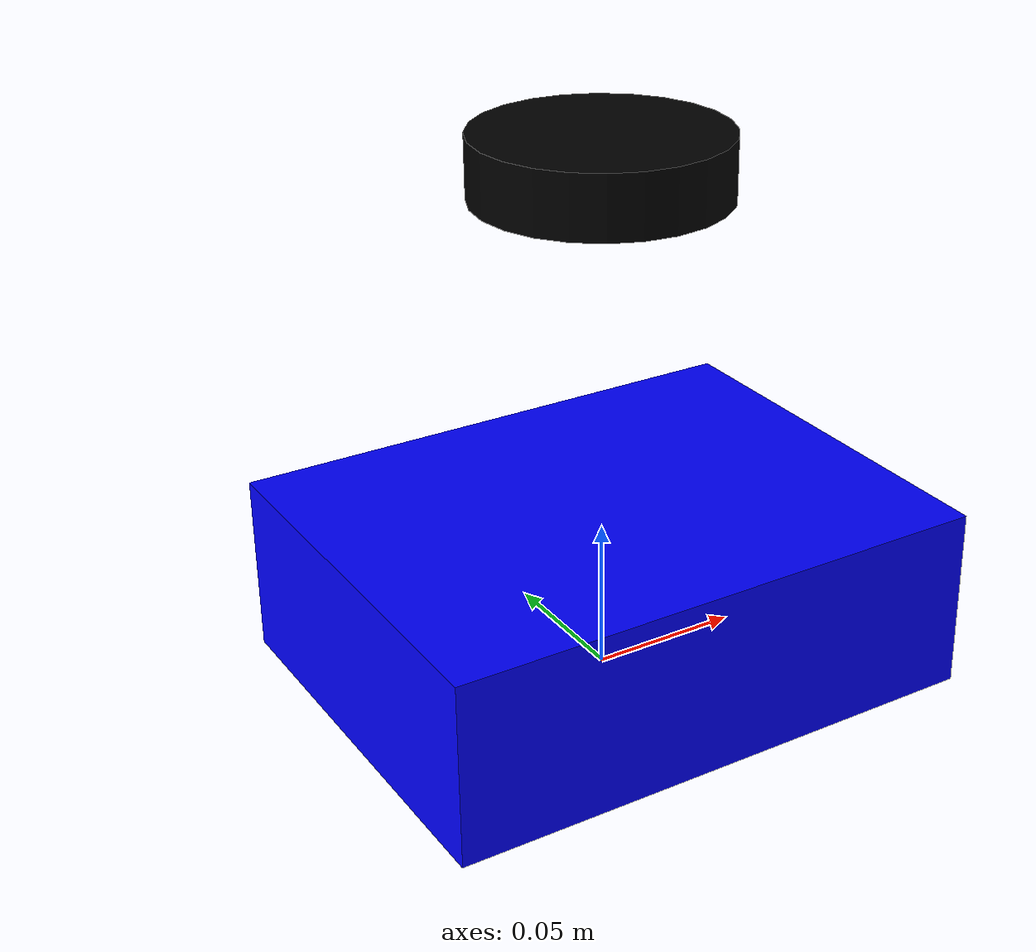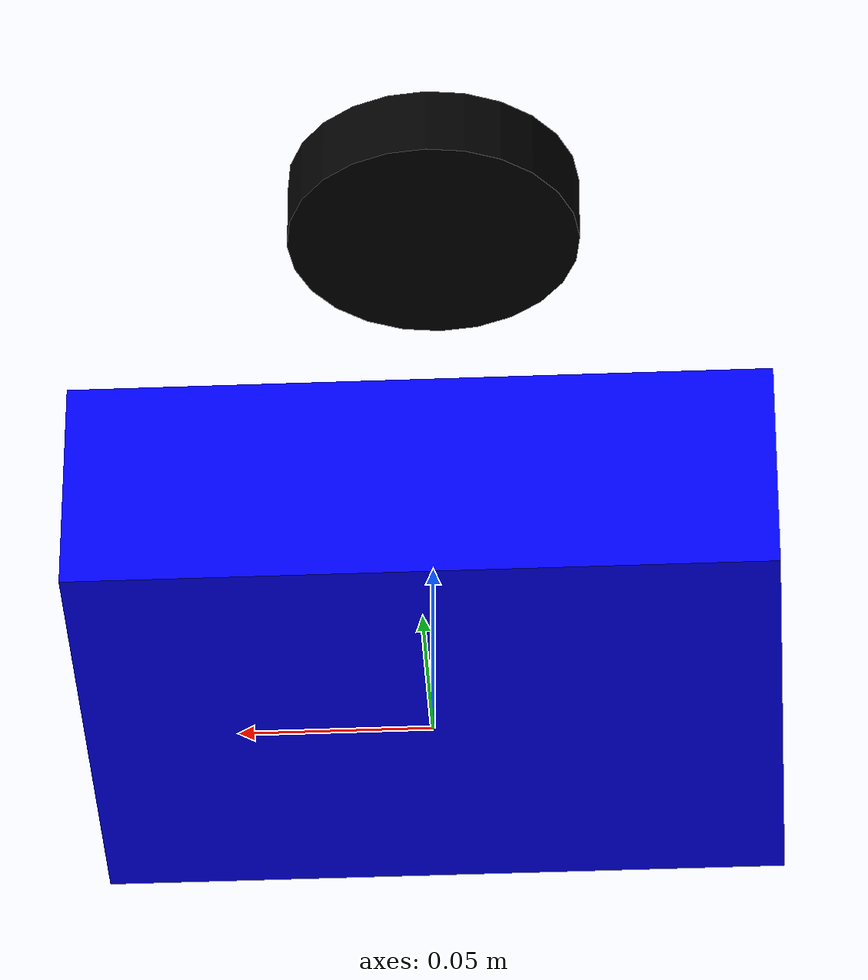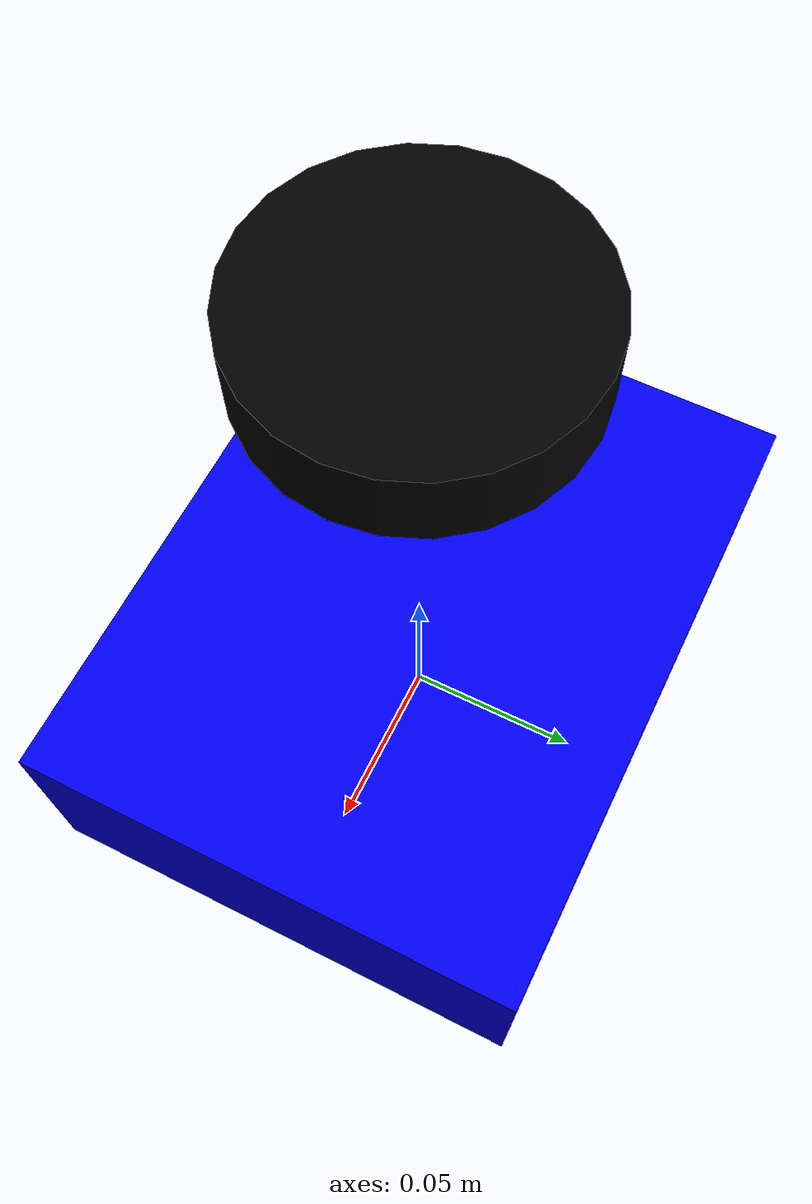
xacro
<?xml version="1.0"?>
<robot name="picar_b2" xmlns:xacro="http://www.ros.org/wiki/xacro">

  <!-- 1. Base Footprint (root)                               -->
  <link name="base_footprint"/>

  <joint name="base_footprint_to_base_link" type="fixed">
    <parent link="base_footprint"/>
    <child link="base_link"/>
    <origin xyz="0 0 0.03" rpy="0 0 0"/>
  </joint>

  <!-- 2. Base Link                                            -->
  <link name="base_link">
    <visual>
      <origin xyz="0 0 0" rpy="0 0 0"/>
      <geometry>
        <box size="0.18 0.14 0.06"/>
      </geometry>
      <material name="blue">
        <color rgba="0 0 1 1"/>
      </material>
    </visual>
  </link>

  <!-- 3. Wheels (visualization only)                          -->
  <link name="rear_left_wheel"/>
  <joint name="rear_left_wheel_joint" type="fixed">
    <parent link="base_link"/>
    <child link="rear_left_wheel"/>
    <origin xyz="-0.06 0.07 0.02" rpy="0 0 0"/>
  </joint>

  <link name="rear_right_wheel"/>
  <joint name="rear_right_wheel_joint" type="fixed">
    <parent link="base_link"/>
    <child link="rear_right_wheel"/>
    <origin xyz="-0.06 -0.07 0.02" rpy="0 0 0"/>
  </joint>

  <link name="front_left_wheel"/>
  <joint name="front_left_wheel_joint" type="fixed">
    <parent link="base_link"/>
    <child link="front_left_wheel"/>
    <origin xyz="0.06 0.07 0.02" rpy="0 0 0"/>
  </joint>

  <link name="front_right_wheel"/>
  <joint name="front_right_wheel_joint" type="fixed">
    <parent link="base_link"/>
    <child link="front_right_wheel"/>
    <origin xyz="0.06 -0.07 0.02" rpy="0 0 0"/>
  </joint>

  <!-- 4. RPLidar A1 (180° 회전 버전)                          -->
  <link name="laser_frame">
    <visual>
      <origin xyz="0 0 0" rpy="0 0 0"/>
      <geometry>
        <cylinder radius="0.04" length="0.02"/>
      </geometry>
      <material name="black">
        <color rgba="0 0 0 1"/>
      </material>
    </visual>
  </link>

  <joint name="laser_joint" type="fixed">
    <parent link="base_link"/>
    <child link="laser_frame"/>
    <!-- ★ RPLidar 정방향 보정: 180° 회전 (reverse) -->
    <origin xyz="0.00 0 0.14" rpy="0 0 3.14159"/>
  </joint>

  <!-- 5. IMU                                                  -->
  <link name="imu_link"/>
  <joint name="imu_joint" type="fixed">
    <parent link="base_link"/>
    <child link="imu_link"/>
    <origin xyz="0 0 0.06" rpy="0 0 0"/>
  </joint>

</robot>
